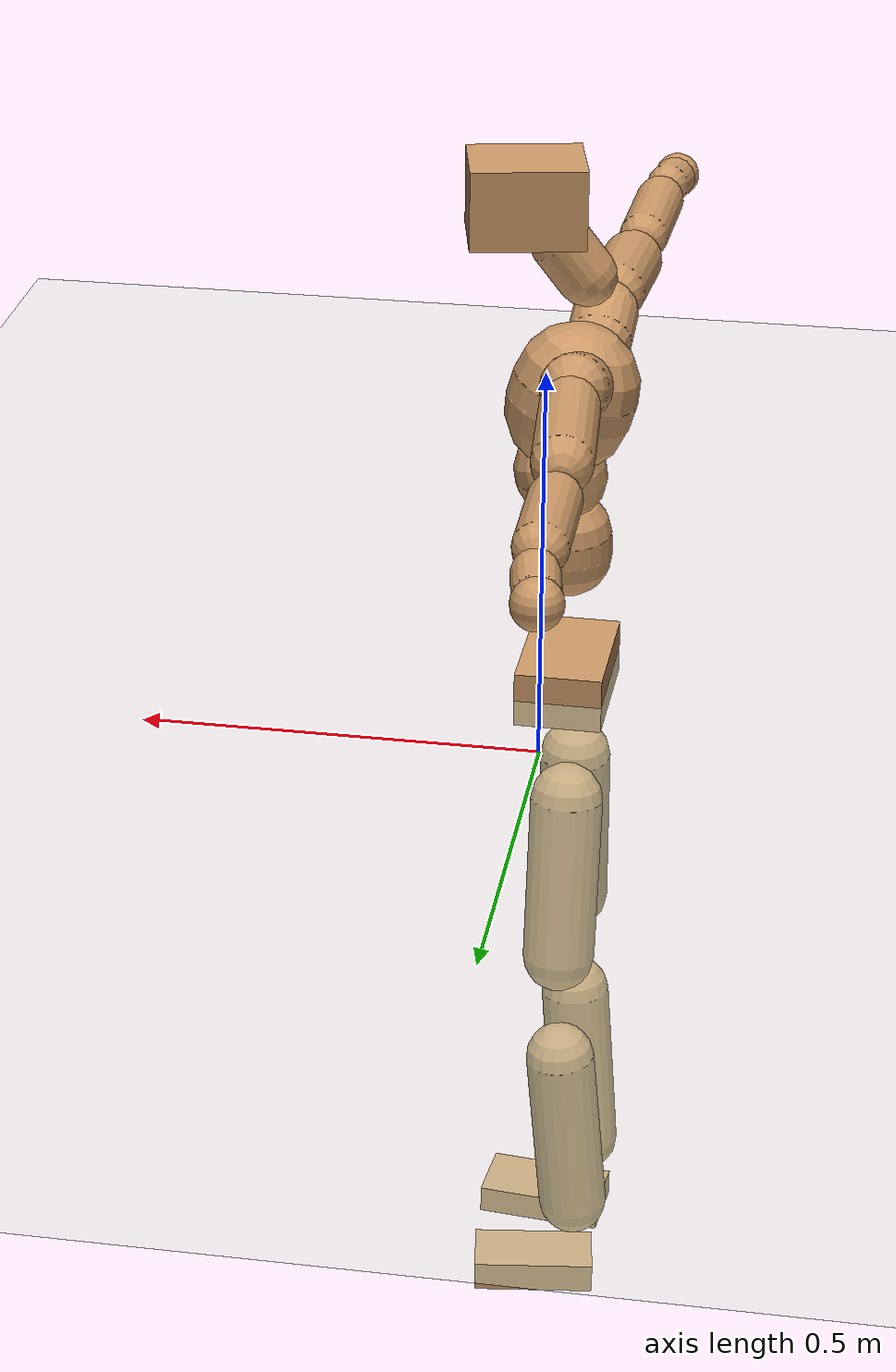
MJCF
<mujoco model="humanoid">
  <compiler coordinate="local" angle="radian"/>
  <default>
    <joint damping="0.0" armature="0.01" stiffness="0.0" limited="true"/>
    <geom conaffinity="1" condim="3" contype="7" margin="0.001" rgba="0.8 0.6 .4 1"/>
  </default>
  <asset>
    <texture type="skybox" builtin="gradient" rgb1=".4 .5 .6" rgb2="0 0 0" width="100" height="100"/>
    <texture builtin="flat" height="1278" mark="cross" markrgb="1 1 1" name="texgeom" random="0.01" rgb1="0.8 0.6 0.4" rgb2="0.8 0.6 0.4" type="cube" width="127"/>
    <texture builtin="checker" height="100" name="texplane" rgb1="0 0 0" rgb2="0.8 0.8 0.8" type="2d" width="100"/>
    <material name="MatPlane" reflectance="0.5" shininess="1" specular="1" texrepeat="60 60" texture="texplane"/>
    <material name="geom" texture="texgeom" texuniform="true"/>
  </asset>
  <worldbody>
    <light cutoff="100" diffuse="1 1 1" dir="-0 0 -1.3" directional="true" exponent="1" pos="0 0 1.3" specular=".1 .1 .1"/>
    <geom conaffinity="1" condim="3" name="floor" pos="0 0 0" rgba="0.8 0.9 0.8 1" size="100 100 .2" type="plane" material="MatPlane"/>
    <body name="Pelvis" pos="-0.0008 -0.2216 0.0114">
      <freejoint name="Pelvis"/>
      <geom type="box" contype="1" conaffinity="1" density="500" pos="-0.0064 0.0001 -0.0120" size="0.0559 0.0884 0.0358" quat="1.0000 0.0000 0.0000 -0.0082" name="Pelvis"/>
      <body name="L_Hip" pos="-0.0179 0.0554 -0.0867">
        <joint name="L_Hip_x" type="hinge" pos="0 0 0" axis="1 0 0" stiffness="800" damping="80" armature="0.02" range="-180.0000 180.0000"/>
        <joint name="L_Hip_y" type="hinge" pos="0 0 0" axis="0 1 0" stiffness="800" damping="80" armature="0.02" range="-180.0000 180.0000"/>
        <joint name="L_Hip_z" type="hinge" pos="0 0 0" axis="0 0 1" stiffness="800" damping="80" armature="0.02" range="-180.0000 180.0000"/>
        <geom type="capsule" contype="1" conaffinity="1" density="500" fromto="0.0009 0.0078 -0.0749 0.0037 0.0311 -0.2996" size="0.0467" name="L_Hip"/>
        <body name="L_Knee" pos="0.0046 0.0389 -0.3745">
          <joint name="L_Knee_x" type="hinge" pos="0 0 0" axis="1 0 0" stiffness="800" damping="80" armature="0.02" range="-180.0000 180.0000"/>
          <joint name="L_Knee_y" type="hinge" pos="0 0 0" axis="0 1 0" stiffness="800" damping="80" armature="0.02" range="-180.0000 180.0000"/>
          <joint name="L_Knee_z" type="hinge" pos="0 0 0" axis="0 0 1" stiffness="800" damping="80" armature="0.02" range="-180.0000 180.0000"/>
          <geom type="capsule" contype="1" conaffinity="1" density="500" fromto="-0.0071 -0.0029 -0.0791 -0.0282 -0.0116 -0.3166" size="0.0453" name="L_Knee"/>
          <body name="L_Ankle" pos="-0.0353 -0.0145 -0.3957">
            <joint name="L_Ankle_x" type="hinge" pos="0 0 0" axis="1 0 0" stiffness="800" damping="80" armature="0.02" range="-180.0000 180.0000"/>
            <joint name="L_Ankle_y" type="hinge" pos="0 0 0" axis="0 1 0" stiffness="800" damping="80" armature="0.02" range="-180.0000 180.0000"/>
            <joint name="L_Ankle_z" type="hinge" pos="0 0 0" axis="0 0 1" stiffness="800" damping="80" armature="0.02" range="-180.0000 180.0000"/>
            <geom type="box" contype="1" conaffinity="1" density="500" pos="0.0587 0.0080 -0.0277" size="0.0805 0.04 0.0205" quat="0.9977 0.0000 0.0000 0.0673" name="L_Ankle"/>
            <body name="L_Toe" pos="0.1174 0.0159 -0.0554">
              <joint name="L_Toe_x" type="hinge" pos="0 0 0" axis="1 0 0" stiffness="500" damping="50" armature="0.02" range="-180.0000 180.0000"/>
              <joint name="L_Toe_y" type="hinge" pos="0 0 0" axis="0 1 0" stiffness="500" damping="50" armature="0.02" range="-180.0000 180.0000"/>
              <joint name="L_Toe_z" type="hinge" pos="0 0 0" axis="0 0 1" stiffness="500" damping="50" armature="0.02" range="-180.0000 180.0000"/>
              <geom type="box" contype="1" conaffinity="1" density="500" pos="0.0000 0.0000 0.0282" size="0.0008 0.002 0.001" quat="0.9972 0.0000 0.0000 0.0744" name="L_Toe"/>
            </body>
          </body>
        </body>
      </body>
      <body name="R_Hip" pos="-0.0132 -0.0522 -0.0852">
        <joint name="R_Hip_x" type="hinge" pos="0 0 0" axis="1 0 0" stiffness="800" damping="80" armature="0.02" range="-180.0000 180.0000"/>
        <joint name="R_Hip_y" type="hinge" pos="0 0 0" axis="0 1 0" stiffness="800" damping="80" armature="0.02" range="-180.0000 180.0000"/>
        <joint name="R_Hip_z" type="hinge" pos="0 0 0" axis="0 0 1" stiffness="800" damping="80" armature="0.02" range="-180.0000 180.0000"/>
        <geom type="capsule" contype="1" conaffinity="1" density="500" fromto="0.0004 -0.0086 -0.0769 0.0016 -0.0343 -0.3075" size="0.046" name="R_Hip"/>
        <body name="R_Knee" pos="0.002 -0.0429 -0.3844">
          <joint name="R_Knee_x" type="hinge" pos="0 0 0" axis="1 0 0" stiffness="800" damping="80" armature="0.02" range="-180.0000 180.0000"/>
          <joint name="R_Knee_y" type="hinge" pos="0 0 0" axis="0 1 0" stiffness="800" damping="80" armature="0.02" range="-180.0000 180.0000"/>
          <joint name="R_Knee_z" type="hinge" pos="0 0 0" axis="0 0 1" stiffness="800" damping="80" armature="0.02" range="-180.0000 180.0000"/>
          <geom type="capsule" contype="1" conaffinity="1" density="500" fromto="-0.0066 0.0037 -0.0792 -0.0262 0.0147 -0.3169" size="0.0459" name="R_Knee"/>
          <body name="R_Ankle" pos="-0.0328 0.0184 -0.3961">
            <joint name="R_Ankle_x" type="hinge" pos="0 0 0" axis="1 0 0" stiffness="800" damping="80" armature="0.02" range="-180.0000 180.0000"/>
            <joint name="R_Ankle_y" type="hinge" pos="0 0 0" axis="0 1 0" stiffness="800" damping="80" armature="0.02" range="-180.0000 180.0000"/>
            <joint name="R_Ankle_z" type="hinge" pos="0 0 0" axis="0 0 1" stiffness="800" damping="80" armature="0.02" range="-180.0000 180.0000"/>
            <geom type="box" contype="1" conaffinity="1" density="500" pos="0.0601 -0.0060 -0.0229" size="0.0837 0.0445 0.0189" quat="0.9988 0.0000 0.0000 -0.0500" name="R_Ankle"/>
            <body name="R_Toe" pos="0.1201 -0.012 -0.0458">
              <joint name="R_Toe_x" type="hinge" pos="0 0 0" axis="1 0 0" stiffness="500" damping="50" armature="0.02" range="-180.0000 180.0000"/>
              <joint name="R_Toe_y" type="hinge" pos="0 0 0" axis="0 1 0" stiffness="500" damping="50" armature="0.02" range="-180.0000 180.0000"/>
              <joint name="R_Toe_z" type="hinge" pos="0 0 0" axis="0 0 1" stiffness="500" damping="50" armature="0.02" range="-180.0000 180.0000"/>
              <geom type="box" contype="1" conaffinity="1" density="500" pos="0.0000 0.0000 0.0254" size="0.0008 0.0021 0.0011" quat="0.9992 0.0000 0.0000 -0.0410" name="R_Toe"/>
            </body>
          </body>
        </body>
      </body>
      <body name="Torso" pos="-0.0072 -0.0025 0.0997">
        <joint name="Torso_x" type="hinge" pos="0 0 0" axis="1 0 0" stiffness="1000" damping="100" armature="0.02" range="-180.0000 180.0000"/>
        <joint name="Torso_y" type="hinge" pos="0 0 0" axis="0 1 0" stiffness="1000" damping="100" armature="0.02" range="-180.0000 180.0000"/>
        <joint name="Torso_z" type="hinge" pos="0 0 0" axis="0 0 1" stiffness="1000" damping="100" armature="0.02" range="-180.0000 180.0000"/>
        <geom type="capsule" contype="1" conaffinity="1" density="500" fromto="0.0035 0.0026 0.0865 0.0023 0.0017 0.0576" size="0.0545" name="Torso"/>
        <body name="Spine" pos="0.0058 0.0043 0.1441">
          <joint name="Spine_x" type="hinge" pos="0 0 0" axis="1 0 0" stiffness="1000" damping="100" armature="0.02" range="-180.0000 180.0000"/>
          <joint name="Spine_y" type="hinge" pos="0 0 0" axis="0 1 0" stiffness="1000" damping="100" armature="0.02" range="-180.0000 180.0000"/>
          <joint name="Spine_z" type="hinge" pos="0 0 0" axis="0 0 1" stiffness="1000" damping="100" armature="0.02" range="-180.0000 180.0000"/>
          <geom type="capsule" contype="1" conaffinity="1" density="500" fromto="0.0114 0.0011 0.0314 0.0076 0.0007 0.0209" size="0.0576" name="Spine"/>
          <body name="Chest" pos="0.0191 0.0018 0.0523">
            <joint name="Chest_x" type="hinge" pos="0 0 0" axis="1 0 0" stiffness="1000" damping="100" armature="0.02" range="-180.0000 180.0000"/>
            <joint name="Chest_y" type="hinge" pos="0 0 0" axis="0 1 0" stiffness="1000" damping="100" armature="0.02" range="-180.0000 180.0000"/>
            <joint name="Chest_z" type="hinge" pos="0 0 0" axis="0 0 1" stiffness="1000" damping="100" armature="0.02" range="-180.0000 180.0000"/>
            <geom type="capsule" contype="1" conaffinity="1" density="500" fromto="-0.0259 -0.0015 0.0898 -0.0173 -0.0010 0.0599" size="0.0802" name="Chest"/>
            <body name="Neck" pos="-0.0473 -0.0042 0.2182">
              <joint name="Neck_x" type="hinge" pos="0 0 0" axis="1 0 0" stiffness="500" damping="50" armature="0.02" range="-180.0000 180.0000"/>
              <joint name="Neck_y" type="hinge" pos="0 0 0" axis="0 1 0" stiffness="500" damping="50" armature="0.02" range="-180.0000 180.0000"/>
              <joint name="Neck_z" type="hinge" pos="0 0 0" axis="0 0 1" stiffness="500" damping="50" armature="0.02" range="-180.0000 180.0000"/>
              <geom type="capsule" contype="1" conaffinity="1" density="500" fromto="0.0113 0.0020 0.0152 0.0452 0.0080 0.0607" size="0.0375" name="Neck"/>
              <body name="Head" pos="0.0565 0.01 0.0758">
                <joint name="Head_x" type="hinge" pos="0 0 0" axis="1 0 0" stiffness="500" damping="50" armature="0.02" range="-180.0000 180.0000"/>
                <joint name="Head_y" type="hinge" pos="0 0 0" axis="0 1 0" stiffness="500" damping="50" armature="0.02" range="-180.0000 180.0000"/>
                <joint name="Head_z" type="hinge" pos="0 0 0" axis="0 0 1" stiffness="500" damping="50" armature="0.02" range="-180.0000 180.0000"/>
                <geom type="box" contype="1" conaffinity="1" density="500" pos="0.0293 0.0060 0.0389" size="0.0705 0.0541 0.0495" quat="0.9949 0.0000 0.0000 0.1005" name="Head"/>
              </body>
            </body>
            <body name="L_Thorax" pos="-0.039 0.0633 0.1165">
              <joint name="L_Thorax_x" type="hinge" pos="0 0 0" axis="1 0 0" stiffness="500" damping="50" armature="0.02" range="-180.0000 180.0000"/>
              <joint name="L_Thorax_y" type="hinge" pos="0 0 0" axis="0 1 0" stiffness="500" damping="50" armature="0.02" range="-180.0000 180.0000"/>
              <joint name="L_Thorax_z" type="hinge" pos="0 0 0" axis="0 0 1" stiffness="500" damping="50" armature="0.02" range="-180.0000 180.0000"/>
              <geom type="capsule" contype="1" conaffinity="1" density="500" fromto="0.0003 0.0152 0.0054 0.0010 0.0608 0.0214" size="0.0422" name="L_Thorax"/>
              <body name="L_Shoulder" pos="0.0013 0.076 0.0268">
                <joint name="L_Shoulder_x" type="hinge" pos="0 0 0" axis="1 0 0" stiffness="500" damping="50" armature="0.02" range="-720.0000 720.0000"/>
                <joint name="L_Shoulder_y" type="hinge" pos="0 0 0" axis="0 1 0" stiffness="500" damping="50" armature="0.02" range="-720.0000 720.0000"/>
                <joint name="L_Shoulder_z" type="hinge" pos="0 0 0" axis="0 0 1" stiffness="500" damping="50" armature="0.02" range="-720.0000 720.0000"/>
                <geom type="capsule" contype="1" conaffinity="1" density="500" fromto="-0.0037 0.0505 -0.0024 -0.0148 0.2021 -0.0096" size="0.0368" name="L_Shoulder"/>
                <body name="L_Elbow" pos="-0.0185 0.2526 -0.0119">
                  <joint name="L_Elbow_x" type="hinge" pos="0 0 0" axis="1 0 0" stiffness="500" damping="50" armature="0.02" range="-720.0000 720.0000"/>
                  <joint name="L_Elbow_y" type="hinge" pos="0 0 0" axis="0 1 0" stiffness="500" damping="50" armature="0.02" range="-720.0000 720.0000"/>
                  <joint name="L_Elbow_z" type="hinge" pos="0 0 0" axis="0 0 1" stiffness="500" damping="50" armature="0.02" range="-720.0000 720.0000"/>
                  <geom type="capsule" contype="1" conaffinity="1" density="500" fromto="-0.0008 0.0466 0.0014 -0.0031 0.1865 0.0056" size="0.0318" name="L_Elbow"/>
                  <body name="L_Wrist" pos="-0.0038 0.2332 0.007">
                    <joint name="L_Wrist_x" type="hinge" pos="0 0 0" axis="1 0 0" stiffness="300" damping="30" armature="0.02" range="-180.0000 180.0000"/>
                    <joint name="L_Wrist_y" type="hinge" pos="0 0 0" axis="0 1 0" stiffness="300" damping="30" armature="0.02" range="-180.0000 180.0000"/>
                    <joint name="L_Wrist_z" type="hinge" pos="0 0 0" axis="0 0 1" stiffness="300" damping="30" armature="0.02" range="-180.0000 180.0000"/>
                    <geom type="capsule" contype="1" conaffinity="1" density="500" fromto="-0.0025 0.0147 -0.0018 -0.0100 0.0589 -0.0072" size="0.0273" name="L_Wrist"/>
                    <body name="L_Hand" pos="-0.0125 0.0736 -0.009">
                      <joint name="L_Hand_x" type="hinge" pos="0 0 0" axis="1 0 0" stiffness="300" damping="30" armature="0.02" range="-180.0000 180.0000"/>
                      <joint name="L_Hand_y" type="hinge" pos="0 0 0" axis="0 1 0" stiffness="300" damping="30" armature="0.02" range="-180.0000 180.0000"/>
                      <joint name="L_Hand_z" type="hinge" pos="0 0 0" axis="0 0 1" stiffness="300" damping="30" armature="0.02" range="-180.0000 180.0000"/>
                      <geom type="sphere" contype="1" conaffinity="1" density="500" size="0.0296" pos="0.0000 0.0000 0.0000" name="L_Hand"/>
                    </body>
                  </body>
                </body>
              </body>
            </body>
            <body name="R_Thorax" pos="-0.0432 -0.0668 0.1142">
              <joint name="R_Thorax_x" type="hinge" pos="0 0 0" axis="1 0 0" stiffness="500" damping="50" armature="0.02" range="-180.0000 180.0000"/>
              <joint name="R_Thorax_y" type="hinge" pos="0 0 0" axis="0 1 0" stiffness="500" damping="50" armature="0.02" range="-180.0000 180.0000"/>
              <joint name="R_Thorax_z" type="hinge" pos="0 0 0" axis="0 0 1" stiffness="500" damping="50" armature="0.02" range="-180.0000 180.0000"/>
              <geom type="capsule" contype="1" conaffinity="1" density="500" fromto="-0.0007 -0.0159 0.0062 -0.0028 -0.0637 0.0247" size="0.0416" name="R_Thorax"/>
              <body name="R_Shoulder" pos="-0.0035 -0.0796 0.0308">
                <joint name="R_Shoulder_x" type="hinge" pos="0 0 0" axis="1 0 0" stiffness="500" damping="50" armature="0.02" range="-720.0000 720.0000"/>
                <joint name="R_Shoulder_y" type="hinge" pos="0 0 0" axis="0 1 0" stiffness="500" damping="50" armature="0.02" range="-720.0000 720.0000"/>
                <joint name="R_Shoulder_z" type="hinge" pos="0 0 0" axis="0 0 1" stiffness="500" damping="50" armature="0.02" range="-720.0000 720.0000"/>
                <geom type="capsule" contype="1" conaffinity="1" density="500" fromto="-0.0023 -0.0493 -0.0031 -0.0094 -0.1973 -0.0125" size="0.0396" name="R_Shoulder"/>
                <body name="R_Elbow" pos="-0.0117 -0.2466 -0.0156">
                  <joint name="R_Elbow_x" type="hinge" pos="0 0 0" axis="1 0 0" stiffness="500" damping="50" armature="0.02" range="-720.0000 720.0000"/>
                  <joint name="R_Elbow_y" type="hinge" pos="0 0 0" axis="0 1 0" stiffness="500" damping="50" armature="0.02" range="-720.0000 720.0000"/>
                  <joint name="R_Elbow_z" type="hinge" pos="0 0 0" axis="0 0 1" stiffness="500" damping="50" armature="0.02" range="-720.0000 720.0000"/>
                  <geom type="capsule" contype="1" conaffinity="1" density="500" fromto="-0.0022 -0.0491 0.0009 -0.0088 -0.1965 0.0034" size="0.0324" name="R_Elbow"/>
                  <body name="R_Wrist" pos="-0.011 -0.2456 0.0043">
                    <joint name="R_Wrist_x" type="hinge" pos="0 0 0" axis="1 0 0" stiffness="300" damping="30" armature="0.02" range="-180.0000 180.0000"/>
                    <joint name="R_Wrist_y" type="hinge" pos="0 0 0" axis="0 1 0" stiffness="300" damping="30" armature="0.02" range="-180.0000 180.0000"/>
                    <joint name="R_Wrist_z" type="hinge" pos="0 0 0" axis="0 0 1" stiffness="300" damping="30" armature="0.02" range="-180.0000 180.0000"/>
                    <geom type="capsule" contype="1" conaffinity="1" density="500" fromto="-0.0019 -0.0153 -0.0014 -0.0076 -0.0610 -0.0054" size="0.0285" name="R_Wrist"/>
                    <body name="R_Hand" pos="-0.0095 -0.0763 -0.0068">
                      <joint name="R_Hand_x" type="hinge" pos="0 0 0" axis="1 0 0" stiffness="300" damping="30" armature="0.02" range="-180.0000 180.0000"/>
                      <joint name="R_Hand_y" type="hinge" pos="0 0 0" axis="0 1 0" stiffness="300" damping="30" armature="0.02" range="-180.0000 180.0000"/>
                      <joint name="R_Hand_z" type="hinge" pos="0 0 0" axis="0 0 1" stiffness="300" damping="30" armature="0.02" range="-180.0000 180.0000"/>
                      <geom type="sphere" contype="1" conaffinity="1" density="500" size="0.0304" pos="0.0000 0.0000 0.0000" name="R_Hand"/>
                    </body>
                  </body>
                </body>
              </body>
            </body>
          </body>
        </body>
      </body>
    </body>
  </worldbody>
  <actuator>
    <motor name="L_Hip_x" joint="L_Hip_x" gear="500"/>
    <motor name="L_Hip_y" joint="L_Hip_y" gear="500"/>
    <motor name="L_Hip_z" joint="L_Hip_z" gear="500"/>
    <motor name="L_Knee_x" joint="L_Knee_x" gear="500"/>
    <motor name="L_Knee_y" joint="L_Knee_y" gear="500"/>
    <motor name="L_Knee_z" joint="L_Knee_z" gear="500"/>
    <motor name="L_Ankle_x" joint="L_Ankle_x" gear="500"/>
    <motor name="L_Ankle_y" joint="L_Ankle_y" gear="500"/>
    <motor name="L_Ankle_z" joint="L_Ankle_z" gear="500"/>
    <motor name="L_Toe_x" joint="L_Toe_x" gear="500"/>
    <motor name="L_Toe_y" joint="L_Toe_y" gear="500"/>
    <motor name="L_Toe_z" joint="L_Toe_z" gear="500"/>
    <motor name="R_Hip_x" joint="R_Hip_x" gear="500"/>
    <motor name="R_Hip_y" joint="R_Hip_y" gear="500"/>
    <motor name="R_Hip_z" joint="R_Hip_z" gear="500"/>
    <motor name="R_Knee_x" joint="R_Knee_x" gear="500"/>
    <motor name="R_Knee_y" joint="R_Knee_y" gear="500"/>
    <motor name="R_Knee_z" joint="R_Knee_z" gear="500"/>
    <motor name="R_Ankle_x" joint="R_Ankle_x" gear="500"/>
    <motor name="R_Ankle_y" joint="R_Ankle_y" gear="500"/>
    <motor name="R_Ankle_z" joint="R_Ankle_z" gear="500"/>
    <motor name="R_Toe_x" joint="R_Toe_x" gear="500"/>
    <motor name="R_Toe_y" joint="R_Toe_y" gear="500"/>
    <motor name="R_Toe_z" joint="R_Toe_z" gear="500"/>
    <motor name="Torso_x" joint="Torso_x" gear="500"/>
    <motor name="Torso_y" joint="Torso_y" gear="500"/>
    <motor name="Torso_z" joint="Torso_z" gear="500"/>
    <motor name="Spine_x" joint="Spine_x" gear="500"/>
    <motor name="Spine_y" joint="Spine_y" gear="500"/>
    <motor name="Spine_z" joint="Spine_z" gear="500"/>
    <motor name="Chest_x" joint="Chest_x" gear="500"/>
    <motor name="Chest_y" joint="Chest_y" gear="500"/>
    <motor name="Chest_z" joint="Chest_z" gear="500"/>
    <motor name="Neck_x" joint="Neck_x" gear="500"/>
    <motor name="Neck_y" joint="Neck_y" gear="500"/>
    <motor name="Neck_z" joint="Neck_z" gear="500"/>
    <motor name="Head_x" joint="Head_x" gear="500"/>
    <motor name="Head_y" joint="Head_y" gear="500"/>
    <motor name="Head_z" joint="Head_z" gear="500"/>
    <motor name="L_Thorax_x" joint="L_Thorax_x" gear="500"/>
    <motor name="L_Thorax_y" joint="L_Thorax_y" gear="500"/>
    <motor name="L_Thorax_z" joint="L_Thorax_z" gear="500"/>
    <motor name="L_Shoulder_x" joint="L_Shoulder_x" gear="500"/>
    <motor name="L_Shoulder_y" joint="L_Shoulder_y" gear="500"/>
    <motor name="L_Shoulder_z" joint="L_Shoulder_z" gear="500"/>
    <motor name="L_Elbow_x" joint="L_Elbow_x" gear="500"/>
    <motor name="L_Elbow_y" joint="L_Elbow_y" gear="500"/>
    <motor name="L_Elbow_z" joint="L_Elbow_z" gear="500"/>
    <motor name="L_Wrist_x" joint="L_Wrist_x" gear="500"/>
    <motor name="L_Wrist_y" joint="L_Wrist_y" gear="500"/>
    <motor name="L_Wrist_z" joint="L_Wrist_z" gear="500"/>
    <motor name="L_Hand_x" joint="L_Hand_x" gear="500"/>
    <motor name="L_Hand_y" joint="L_Hand_y" gear="500"/>
    <motor name="L_Hand_z" joint="L_Hand_z" gear="500"/>
    <motor name="R_Thorax_x" joint="R_Thorax_x" gear="500"/>
    <motor name="R_Thorax_y" joint="R_Thorax_y" gear="500"/>
    <motor name="R_Thorax_z" joint="R_Thorax_z" gear="500"/>
    <motor name="R_Shoulder_x" joint="R_Shoulder_x" gear="500"/>
    <motor name="R_Shoulder_y" joint="R_Shoulder_y" gear="500"/>
    <motor name="R_Shoulder_z" joint="R_Shoulder_z" gear="500"/>
    <motor name="R_Elbow_x" joint="R_Elbow_x" gear="500"/>
    <motor name="R_Elbow_y" joint="R_Elbow_y" gear="500"/>
    <motor name="R_Elbow_z" joint="R_Elbow_z" gear="500"/>
    <motor name="R_Wrist_x" joint="R_Wrist_x" gear="500"/>
    <motor name="R_Wrist_y" joint="R_Wrist_y" gear="500"/>
    <motor name="R_Wrist_z" joint="R_Wrist_z" gear="500"/>
    <motor name="R_Hand_x" joint="R_Hand_x" gear="500"/>
    <motor name="R_Hand_y" joint="R_Hand_y" gear="500"/>
    <motor name="R_Hand_z" joint="R_Hand_z" gear="500"/>
  </actuator>
  <contact>
    <exclude body1="Torso" body2="Chest"/>
    <exclude body1="Head" body2="Chest"/>
    <exclude body1="R_Knee" body2="R_Toe"/>
    <exclude body1="R_Knee" body2="L_Ankle"/>
    <exclude body1="R_Knee" body2="L_Toe"/>
    <exclude body1="L_Knee" body2="L_Toe"/>
    <exclude body1="L_Knee" body2="R_Ankle"/>
    <exclude body1="L_Knee" body2="R_Toe"/>
    <exclude body1="L_Shoulder" body2="Chest"/>
    <exclude body1="R_Shoulder" body2="Chest"/>
  </contact>
  <sensor/>
  <size njmax="700" nconmax="700"/>
</mujoco>
